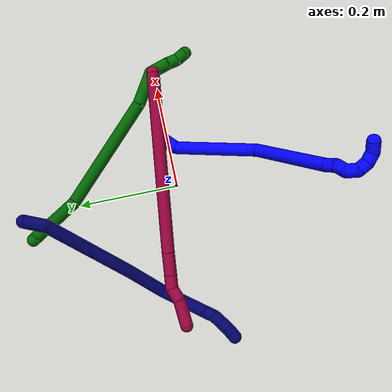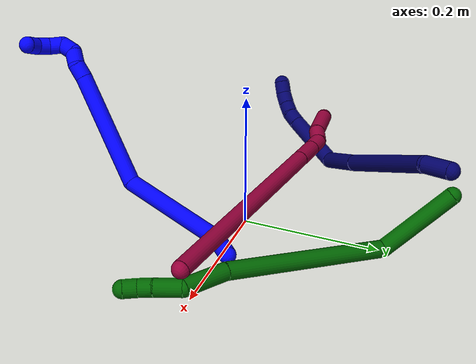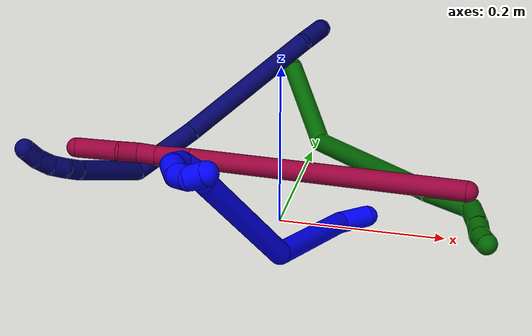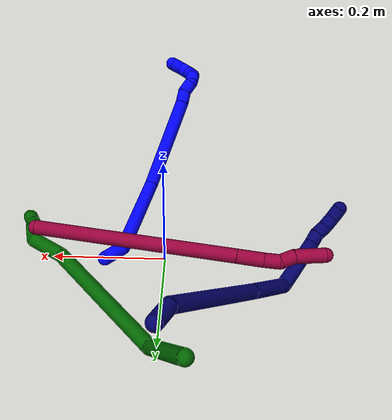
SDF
<sdf version="1.7">
 <world name="default">
  <model name="1">
   <static>0</static>
   <link name="1">
    <collision name="collision-cylinder-e_1_1_4">
     <pose>3e-06 3.3e-05 0.020058 -0.001623 0.000137 0</pose>
     <geometry><cylinder><radius>0.0125</radius><length>0.040116</length></cylinder></geometry>
     <surface>
      <friction><ode><mu>1.16</mu><mu2>1.16</mu2><slip1>0</slip1><slip2>0</slip2></ode></friction>
      <contact><ode><kp>1e+06</kp><kd>1</kd><max_vel>0</max_vel><min_depth>0.001</min_depth></ode></contact>
     </surface>
    </collision>
    <visual name="visual-cylinder-e_1_1_4">
     <pose>3e-06 3.3e-05 0.020058 -0.001623 0.000137 0</pose>
     <geometry><cylinder><radius>0.0125</radius><length>0.040116</length></cylinder></geometry>
     <material><ambient>0 0 1 1</ambient></material>
    </visual>
    <collision name="collision-cylinder-e_2_4_5">
     <pose>-0.021767 -0.037509 0.108158 0.504546 -0.273118 -0.070811</pose>
     <geometry><cylinder><radius>0.0125</radius><length>0.16144</length></cylinder></geometry>
     <surface>
      <friction><ode><mu>1.16</mu><mu2>1.16</mu2><slip1>0</slip1><slip2>0</slip2></ode></friction>
      <contact><ode><kp>1e+06</kp><kd>1</kd><max_vel>0</max_vel><min_depth>0.001</min_depth></ode></contact>
     </surface>
    </collision>
    <visual name="visual-cylinder-e_2_4_5">
     <pose>-0.021767 -0.037509 0.108158 0.504546 -0.273118 -0.070811</pose>
     <geometry><cylinder><radius>0.0125</radius><length>0.16144</length></cylinder></geometry>
     <material><ambient>0 0 1 1</ambient></material>
    </visual>
    <collision name="collision-cylinder-e_3_5_6">
     <pose>-0.016321 -0.132646 0.234787 0.776579 0.320016 0.131842</pose>
     <geometry><cylinder><radius>0.0125</radius><length>0.173051</length></cylinder></geometry>
     <surface>
      <friction><ode><mu>1.16</mu><mu2>1.16</mu2><slip1>0</slip1><slip2>0</slip2></ode></friction>
      <contact><ode><kp>1e+06</kp><kd>1</kd><max_vel>0</max_vel><min_depth>0.001</min_depth></ode></contact>
     </surface>
    </collision>
    <visual name="visual-cylinder-e_3_5_6">
     <pose>-0.016321 -0.132646 0.234787 0.776579 0.320016 0.131842</pose>
     <geometry><cylinder><radius>0.0125</radius><length>0.173051</length></cylinder></geometry>
     <material><ambient>0 0 1 1</ambient></material>
    </visual>
    <collision name="collision-cylinder-e_4_6_7">
     <pose>0.013503 -0.198734 0.30025 0.892043 0.233467 0.112027</pose>
     <geometry><cylinder><radius>0.0125</radius><length>0.022518</length></cylinder></geometry>
     <surface>
      <friction><ode><mu>1.16</mu><mu2>1.16</mu2><slip1>0</slip1><slip2>0</slip2></ode></friction>
      <contact><ode><kp>1e+06</kp><kd>1</kd><max_vel>0</max_vel><min_depth>0.001</min_depth></ode></contact>
     </surface>
    </collision>
    <visual name="visual-cylinder-e_4_6_7">
     <pose>0.013503 -0.198734 0.30025 0.892043 0.233467 0.112027</pose>
     <geometry><cylinder><radius>0.0125</radius><length>0.022518</length></cylinder></geometry>
     <material><ambient>0 0 1 1</ambient></material>
    </visual>
    <collision name="collision-cylinder-e_5_7_8">
     <pose>0.020794 -0.212041 0.315716 0.508005 0.444837 0.117292</pose>
     <geometry><cylinder><radius>0.0125</radius><length>0.02178</length></cylinder></geometry>
     <surface>
      <friction><ode><mu>1.16</mu><mu2>1.16</mu2><slip1>0</slip1><slip2>0</slip2></ode></friction>
      <contact><ode><kp>1e+06</kp><kd>1</kd><max_vel>0</max_vel><min_depth>0.001</min_depth></ode></contact>
     </surface>
    </collision>
    <visual name="visual-cylinder-e_5_7_8">
     <pose>0.020794 -0.212041 0.315716 0.508005 0.444837 0.117292</pose>
     <geometry><cylinder><radius>0.0125</radius><length>0.02178</length></cylinder></geometry>
     <material><ambient>0 0 1 1</ambient></material>
    </visual>
    <collision name="collision-cylinder-e_6_8_9">
     <pose>0.022891 -0.22286 0.332376 0.642206 -0.251388 -0.084009</pose>
     <geometry><cylinder><radius>0.0125</radius><length>0.020814</length></cylinder></geometry>
     <surface>
      <friction><ode><mu>1.16</mu><mu2>1.16</mu2><slip1>0</slip1><slip2>0</slip2></ode></friction>
      <contact><ode><kp>1e+06</kp><kd>1</kd><max_vel>0</max_vel><min_depth>0.001</min_depth></ode></contact>
     </surface>
    </collision>
    <visual name="visual-cylinder-e_6_8_9">
     <pose>0.022891 -0.22286 0.332376 0.642206 -0.251388 -0.084009</pose>
     <geometry><cylinder><radius>0.0125</radius><length>0.020814</length></cylinder></geometry>
     <material><ambient>0 0 1 1</ambient></material>
    </visual>
    <collision name="collision-cylinder-e_7_9_10">
     <pose>0.012418 -0.234528 0.343348 1.09517 -0.894101 -0.568838</pose>
     <geometry><cylinder><radius>0.0125</radius><length>0.020226</length></cylinder></geometry>
     <surface>
      <friction><ode><mu>1.16</mu><mu2>1.16</mu2><slip1>0</slip1><slip2>0</slip2></ode></friction>
      <contact><ode><kp>1e+06</kp><kd>1</kd><max_vel>0</max_vel><min_depth>0.001</min_depth></ode></contact>
     </surface>
    </collision>
    <visual name="visual-cylinder-e_7_9_10">
     <pose>0.012418 -0.234528 0.343348 1.09517 -0.894101 -0.568838</pose>
     <geometry><cylinder><radius>0.0125</radius><length>0.020226</length></cylinder></geometry>
     <material><ambient>0 0 1 1</ambient></material>
    </visual>
    <collision name="collision-cylinder-e_8_10_11">
     <pose>-0.001444 -0.248077 0.344923 1.73659 -0.639933 -0.74615</pose>
     <geometry><cylinder><radius>0.0125</radius><length>0.020019</length></cylinder></geometry>
     <surface>
      <friction><ode><mu>1.16</mu><mu2>1.16</mu2><slip1>0</slip1><slip2>0</slip2></ode></friction>
      <contact><ode><kp>1e+06</kp><kd>1</kd><max_vel>0</max_vel><min_depth>0.001</min_depth></ode></contact>
     </surface>
    </collision>
    <visual name="visual-cylinder-e_8_10_11">
     <pose>-0.001444 -0.248077 0.344923 1.73659 -0.639933 -0.74615</pose>
     <geometry><cylinder><radius>0.0125</radius><length>0.020019</length></cylinder></geometry>
     <material><ambient>0 0 1 1</ambient></material>
    </visual>
    <collision name="collision-cylinder-e_9_11_2">
     <pose>-0.010089 -0.264168 0.338454 2.13255 -0.269596 -0.481677</pose>
     <geometry><cylinder><radius>0.0125</radius><length>0.020037</length></cylinder></geometry>
     <surface>
      <friction><ode><mu>1.16</mu><mu2>1.16</mu2><slip1>0</slip1><slip2>0</slip2></ode></friction>
      <contact><ode><kp>1e+06</kp><kd>1</kd><max_vel>0</max_vel><min_depth>0.001</min_depth></ode></contact>
     </surface>
    </collision>
    <visual name="visual-cylinder-e_9_11_2">
     <pose>-0.010089 -0.264168 0.338454 2.13255 -0.269596 -0.481677</pose>
     <geometry><cylinder><radius>0.0125</radius><length>0.020037</length></cylinder></geometry>
     <material><ambient>0 0 1 1</ambient></material>
    </visual>
    <collision name="collision-sphere-2">
     <pose>-0.012758 -0.272341 0.33331 0 -0 0</pose>
     <geometry><sphere><radius>0.0125</radius></sphere></geometry>
     <surface>
      <friction><ode><mu>1.16</mu><mu2>1.16</mu2><slip1>0</slip1><slip2>0</slip2></ode></friction>
      <contact><ode><kp>1e+06</kp><kd>1</kd><max_vel>0</max_vel><min_depth>0.001</min_depth></ode></contact>
     </surface>
    </collision>
    <visual name="visual-sphere-2">
     <pose>-0.012758 -0.272341 0.33331 0 -0 0</pose>
     <geometry><sphere><radius>0.0125</radius></sphere></geometry>
     <material><ambient>0 0 1 1</ambient></material>
    </visual>
    <collision name="collision-sphere-11">
     <pose>-0.007421 -0.255996 0.343598 0 -0 0</pose>
     <geometry><sphere><radius>0.0125</radius></sphere></geometry>
     <surface>
      <friction><ode><mu>1.16</mu><mu2>1.16</mu2><slip1>0</slip1><slip2>0</slip2></ode></friction>
      <contact><ode><kp>1e+06</kp><kd>1</kd><max_vel>0</max_vel><min_depth>0.001</min_depth></ode></contact>
     </surface>
    </collision>
    <visual name="visual-sphere-11">
     <pose>-0.007421 -0.255996 0.343598 0 -0 0</pose>
     <geometry><sphere><radius>0.0125</radius></sphere></geometry>
     <material><ambient>0 0 1 1</ambient></material>
    </visual>
    <collision name="collision-sphere-10">
     <pose>0.004534 -0.240158 0.346248 0 -0 0</pose>
     <geometry><sphere><radius>0.0125</radius></sphere></geometry>
     <surface>
      <friction><ode><mu>1.16</mu><mu2>1.16</mu2><slip1>0</slip1><slip2>0</slip2></ode></friction>
      <contact><ode><kp>1e+06</kp><kd>1</kd><max_vel>0</max_vel><min_depth>0.001</min_depth></ode></contact>
     </surface>
    </collision>
    <visual name="visual-sphere-10">
     <pose>0.004534 -0.240158 0.346248 0 -0 0</pose>
     <geometry><sphere><radius>0.0125</radius></sphere></geometry>
     <material><ambient>0 0 1 1</ambient></material>
    </visual>
    <collision name="collision-sphere-9">
     <pose>0.020303 -0.228898 0.340448 0 -0 0</pose>
     <geometry><sphere><radius>0.0125</radius></sphere></geometry>
     <surface>
      <friction><ode><mu>1.16</mu><mu2>1.16</mu2><slip1>0</slip1><slip2>0</slip2></ode></friction>
      <contact><ode><kp>1e+06</kp><kd>1</kd><max_vel>0</max_vel><min_depth>0.001</min_depth></ode></contact>
     </surface>
    </collision>
    <visual name="visual-sphere-9">
     <pose>0.020303 -0.228898 0.340448 0 -0 0</pose>
     <geometry><sphere><radius>0.0125</radius></sphere></geometry>
     <material><ambient>0 0 1 1</ambient></material>
    </visual>
    <collision name="collision-sphere-4">
     <pose>6e-06 6.5e-05 0.040115 0 -0 0</pose>
     <geometry><sphere><radius>0.0125</radius></sphere></geometry>
     <surface>
      <friction><ode><mu>1.16</mu><mu2>1.16</mu2><slip1>0</slip1><slip2>0</slip2></ode></friction>
      <contact><ode><kp>1e+06</kp><kd>1</kd><max_vel>0</max_vel><min_depth>0.001</min_depth></ode></contact>
     </surface>
    </collision>
    <visual name="visual-sphere-4">
     <pose>6e-06 6.5e-05 0.040115 0 -0 0</pose>
     <geometry><sphere><radius>0.0125</radius></sphere></geometry>
     <material><ambient>0 0 1 1</ambient></material>
    </visual>
    <collision name="collision-sphere-1">
     <geometry><sphere><radius>0.0125</radius></sphere></geometry>
     <surface>
      <friction><ode><mu>1.16</mu><mu2>1.16</mu2><slip1>0</slip1><slip2>0</slip2></ode></friction>
      <contact><ode><kp>1e+06</kp><kd>1</kd><max_vel>0</max_vel><min_depth>0.001</min_depth></ode></contact>
     </surface>
    </collision>
    <visual name="visual-sphere-1">
     <geometry><sphere><radius>0.0125</radius></sphere></geometry>
     <material><ambient>0 0 1 1</ambient></material>
    </visual>
    <collision name="collision-sphere-8">
     <pose>0.02548 -0.216823 0.324305 0 -0 0</pose>
     <geometry><sphere><radius>0.0125</radius></sphere></geometry>
     <surface>
      <friction><ode><mu>1.16</mu><mu2>1.16</mu2><slip1>0</slip1><slip2>0</slip2></ode></friction>
      <contact><ode><kp>1e+06</kp><kd>1</kd><max_vel>0</max_vel><min_depth>0.001</min_depth></ode></contact>
     </surface>
    </collision>
    <visual name="visual-sphere-8">
     <pose>0.02548 -0.216823 0.324305 0 -0 0</pose>
     <geometry><sphere><radius>0.0125</radius></sphere></geometry>
     <material><ambient>0 0 1 1</ambient></material>
    </visual>
    <collision name="collision-sphere-5">
     <pose>-0.04354 -0.075084 0.176201 0 -0 0</pose>
     <geometry><sphere><radius>0.0125</radius></sphere></geometry>
     <surface>
      <friction><ode><mu>1.16</mu><mu2>1.16</mu2><slip1>0</slip1><slip2>0</slip2></ode></friction>
      <contact><ode><kp>1e+06</kp><kd>1</kd><max_vel>0</max_vel><min_depth>0.001</min_depth></ode></contact>
     </surface>
    </collision>
    <visual name="visual-sphere-5">
     <pose>-0.04354 -0.075084 0.176201 0 -0 0</pose>
     <geometry><sphere><radius>0.0125</radius></sphere></geometry>
     <material><ambient>0 0 1 1</ambient></material>
    </visual>
    <collision name="collision-sphere-6">
     <pose>0.010898 -0.190208 0.293374 0 -0 0</pose>
     <geometry><sphere><radius>0.0125</radius></sphere></geometry>
     <surface>
      <friction><ode><mu>1.16</mu><mu2>1.16</mu2><slip1>0</slip1><slip2>0</slip2></ode></friction>
      <contact><ode><kp>1e+06</kp><kd>1</kd><max_vel>0</max_vel><min_depth>0.001</min_depth></ode></contact>
     </surface>
    </collision>
    <visual name="visual-sphere-6">
     <pose>0.010898 -0.190208 0.293374 0 -0 0</pose>
     <geometry><sphere><radius>0.0125</radius></sphere></geometry>
     <material><ambient>0 0 1 1</ambient></material>
    </visual>
    <collision name="collision-sphere-7">
     <pose>0.016108 -0.207259 0.307127 0 -0 0</pose>
     <geometry><sphere><radius>0.0125</radius></sphere></geometry>
     <surface>
      <friction><ode><mu>1.16</mu><mu2>1.16</mu2><slip1>0</slip1><slip2>0</slip2></ode></friction>
      <contact><ode><kp>1e+06</kp><kd>1</kd><max_vel>0</max_vel><min_depth>0.001</min_depth></ode></contact>
     </surface>
    </collision>
    <visual name="visual-sphere-7">
     <pose>0.016108 -0.207259 0.307127 0 -0 0</pose>
     <geometry><sphere><radius>0.0125</radius></sphere></geometry>
     <material><ambient>0 0 1 1</ambient></material>
    </visual>
    <inertial>
     <pose>-0.01017 -0.115487 0.200165 0 -0 0</pose>
     <mass>0.5</mass>
     <inertia>
      <ixx>0.000798</ixx>
      <ixy>0</ixy>
      <ixz>0</ixz>
      <iyy>0.000657</iyy>
      <iyz>0</iyz>
      <izz>0.00045</izz>
     </inertia>
    </inertial>
   </link>
   <pose>0.104504 0.014117 0.01149 -1.50497 -0.701387 2.30315</pose>
  </model>
  <model name="6">
   <static>0</static>
   <link name="6">
    <collision name="collision-cylinder-e_1_1_4">
     <pose>0.055789 -0.007473 -0.020251 2.78808 1.20162 2.63166</pose>
     <geometry><cylinder><radius>0.0125</radius><length>0.119638</length></cylinder></geometry>
     <surface>
      <friction><ode><mu>1.16</mu><mu2>1.16</mu2><slip1>0</slip1><slip2>0</slip2></ode></friction>
      <contact><ode><kp>1e+06</kp><kd>1</kd><max_vel>0</max_vel><min_depth>0.001</min_depth></ode></contact>
     </surface>
    </collision>
    <visual name="visual-cylinder-e_1_1_4">
     <pose>0.055789 -0.007473 -0.020251 2.78808 1.20162 2.63166</pose>
     <geometry><cylinder><radius>0.0125</radius><length>0.119638</length></cylinder></geometry>
     <material><ambient>0 0.392157 0.003922 1</ambient></material>
    </visual>
    <collision name="collision-cylinder-e_2_4_5">
     <pose>0.19913 -0.091841 -0.019331 1.30213 0.831958 0.649321</pose>
     <geometry><cylinder><radius>0.0125</radius><length>0.236867</length></cylinder></geometry>
     <surface>
      <friction><ode><mu>1.16</mu><mu2>1.16</mu2><slip1>0</slip1><slip2>0</slip2></ode></friction>
      <contact><ode><kp>1e+06</kp><kd>1</kd><max_vel>0</max_vel><min_depth>0.001</min_depth></ode></contact>
     </surface>
    </collision>
    <visual name="visual-cylinder-e_2_4_5">
     <pose>0.19913 -0.091841 -0.019331 1.30213 0.831958 0.649321</pose>
     <geometry><cylinder><radius>0.0125</radius><length>0.236867</length></cylinder></geometry>
     <material><ambient>0 0.392157 0.003922 1</ambient></material>
    </visual>
    <collision name="collision-cylinder-e_3_5_6">
     <pose>0.313371 -0.184161 0.012316 0.974169 0.961005 0.538739</pose>
     <geometry><cylinder><radius>0.0125</radius><length>0.065114</length></cylinder></geometry>
     <surface>
      <friction><ode><mu>1.16</mu><mu2>1.16</mu2><slip1>0</slip1><slip2>0</slip2></ode></friction>
      <contact><ode><kp>1e+06</kp><kd>1</kd><max_vel>0</max_vel><min_depth>0.001</min_depth></ode></contact>
     </surface>
    </collision>
    <visual name="visual-cylinder-e_3_5_6">
     <pose>0.313371 -0.184161 0.012316 0.974169 0.961005 0.538739</pose>
     <geometry><cylinder><radius>0.0125</radius><length>0.065114</length></cylinder></geometry>
     <material><ambient>0 0.392157 0.003922 1</ambient></material>
    </visual>
    <collision name="collision-cylinder-e_4_6_7">
     <pose>0.352156 -0.213055 0.017201 1.96418 0.6924 0.990683</pose>
     <geometry><cylinder><radius>0.0125</radius><length>0.037896</length></cylinder></geometry>
     <surface>
      <friction><ode><mu>1.16</mu><mu2>1.16</mu2><slip1>0</slip1><slip2>0</slip2></ode></friction>
      <contact><ode><kp>1e+06</kp><kd>1</kd><max_vel>0</max_vel><min_depth>0.001</min_depth></ode></contact>
     </surface>
    </collision>
    <visual name="visual-cylinder-e_4_6_7">
     <pose>0.352156 -0.213055 0.017201 1.96418 0.6924 0.990683</pose>
     <geometry><cylinder><radius>0.0125</radius><length>0.037896</length></cylinder></geometry>
     <material><ambient>0 0.392157 0.003922 1</ambient></material>
    </visual>
    <collision name="collision-cylinder-e_5_7_8">
     <pose>0.370697 -0.233038 0.007387 2.14618 0.692887 1.1729</pose>
     <geometry><cylinder><radius>0.0125</radius><length>0.020178</length></cylinder></geometry>
     <surface>
      <friction><ode><mu>1.16</mu><mu2>1.16</mu2><slip1>0</slip1><slip2>0</slip2></ode></friction>
      <contact><ode><kp>1e+06</kp><kd>1</kd><max_vel>0</max_vel><min_depth>0.001</min_depth></ode></contact>
     </surface>
    </collision>
    <visual name="visual-cylinder-e_5_7_8">
     <pose>0.370697 -0.233038 0.007387 2.14618 0.692887 1.1729</pose>
     <geometry><cylinder><radius>0.0125</radius><length>0.020178</length></cylinder></geometry>
     <material><ambient>0 0.392157 0.003922 1</ambient></material>
    </visual>
    <collision name="collision-cylinder-e_6_8_2">
     <pose>0.384402 -0.246546 0.001962 1.74087 0.796732 0.926182</pose>
     <geometry><cylinder><radius>0.0125</radius><length>0.020307</length></cylinder></geometry>
     <surface>
      <friction><ode><mu>1.16</mu><mu2>1.16</mu2><slip1>0</slip1><slip2>0</slip2></ode></friction>
      <contact><ode><kp>1e+06</kp><kd>1</kd><max_vel>0</max_vel><min_depth>0.001</min_depth></ode></contact>
     </surface>
    </collision>
    <visual name="visual-cylinder-e_6_8_2">
     <pose>0.384402 -0.246546 0.001962 1.74087 0.796732 0.926182</pose>
     <geometry><cylinder><radius>0.0125</radius><length>0.020307</length></cylinder></geometry>
     <material><ambient>0 0.392157 0.003922 1</ambient></material>
    </visual>
    <collision name="collision-sphere-2">
     <pose>0.391662 -0.253542 0.00076 0 -0 0</pose>
     <geometry><sphere><radius>0.0125</radius></sphere></geometry>
     <surface>
      <friction><ode><mu>1.16</mu><mu2>1.16</mu2><slip1>0</slip1><slip2>0</slip2></ode></friction>
      <contact><ode><kp>1e+06</kp><kd>1</kd><max_vel>0</max_vel><min_depth>0.001</min_depth></ode></contact>
     </surface>
    </collision>
    <visual name="visual-sphere-2">
     <pose>0.391662 -0.253542 0.00076 0 -0 0</pose>
     <geometry><sphere><radius>0.0125</radius></sphere></geometry>
     <material><ambient>0 0.392157 0.003922 1</ambient></material>
    </visual>
    <collision name="collision-sphere-4">
     <pose>0.111578 -0.014946 -0.040502 0 -0 0</pose>
     <geometry><sphere><radius>0.0125</radius></sphere></geometry>
     <surface>
      <friction><ode><mu>1.16</mu><mu2>1.16</mu2><slip1>0</slip1><slip2>0</slip2></ode></friction>
      <contact><ode><kp>1e+06</kp><kd>1</kd><max_vel>0</max_vel><min_depth>0.001</min_depth></ode></contact>
     </surface>
    </collision>
    <visual name="visual-sphere-4">
     <pose>0.111578 -0.014946 -0.040502 0 -0 0</pose>
     <geometry><sphere><radius>0.0125</radius></sphere></geometry>
     <material><ambient>0 0.392157 0.003922 1</ambient></material>
    </visual>
    <collision name="collision-sphere-1">
     <geometry><sphere><radius>0.0125</radius></sphere></geometry>
     <surface>
      <friction><ode><mu>1.16</mu><mu2>1.16</mu2><slip1>0</slip1><slip2>0</slip2></ode></friction>
      <contact><ode><kp>1e+06</kp><kd>1</kd><max_vel>0</max_vel><min_depth>0.001</min_depth></ode></contact>
     </surface>
    </collision>
    <visual name="visual-sphere-1">
     <geometry><sphere><radius>0.0125</radius></sphere></geometry>
     <material><ambient>0 0.392157 0.003922 1</ambient></material>
    </visual>
    <collision name="collision-sphere-8">
     <pose>0.377141 -0.239551 0.003163 0 -0 0</pose>
     <geometry><sphere><radius>0.0125</radius></sphere></geometry>
     <surface>
      <friction><ode><mu>1.16</mu><mu2>1.16</mu2><slip1>0</slip1><slip2>0</slip2></ode></friction>
      <contact><ode><kp>1e+06</kp><kd>1</kd><max_vel>0</max_vel><min_depth>0.001</min_depth></ode></contact>
     </surface>
    </collision>
    <visual name="visual-sphere-8">
     <pose>0.377141 -0.239551 0.003163 0 -0 0</pose>
     <geometry><sphere><radius>0.0125</radius></sphere></geometry>
     <material><ambient>0 0.392157 0.003922 1</ambient></material>
    </visual>
    <collision name="collision-sphere-5">
     <pose>0.286682 -0.168737 0.00184 0 -0 0</pose>
     <geometry><sphere><radius>0.0125</radius></sphere></geometry>
     <surface>
      <friction><ode><mu>1.16</mu><mu2>1.16</mu2><slip1>0</slip1><slip2>0</slip2></ode></friction>
      <contact><ode><kp>1e+06</kp><kd>1</kd><max_vel>0</max_vel><min_depth>0.001</min_depth></ode></contact>
     </surface>
    </collision>
    <visual name="visual-sphere-5">
     <pose>0.286682 -0.168737 0.00184 0 -0 0</pose>
     <geometry><sphere><radius>0.0125</radius></sphere></geometry>
     <material><ambient>0 0.392157 0.003922 1</ambient></material>
    </visual>
    <collision name="collision-sphere-6">
     <pose>0.34006 -0.199585 0.022792 0 -0 0</pose>
     <geometry><sphere><radius>0.0125</radius></sphere></geometry>
     <surface>
      <friction><ode><mu>1.16</mu><mu2>1.16</mu2><slip1>0</slip1><slip2>0</slip2></ode></friction>
      <contact><ode><kp>1e+06</kp><kd>1</kd><max_vel>0</max_vel><min_depth>0.001</min_depth></ode></contact>
     </surface>
    </collision>
    <visual name="visual-sphere-6">
     <pose>0.34006 -0.199585 0.022792 0 -0 0</pose>
     <geometry><sphere><radius>0.0125</radius></sphere></geometry>
     <material><ambient>0 0.392157 0.003922 1</ambient></material>
    </visual>
    <collision name="collision-sphere-7">
     <pose>0.364252 -0.226526 0.011611 0 -0 0</pose>
     <geometry><sphere><radius>0.0125</radius></sphere></geometry>
     <surface>
      <friction><ode><mu>1.16</mu><mu2>1.16</mu2><slip1>0</slip1><slip2>0</slip2></ode></friction>
      <contact><ode><kp>1e+06</kp><kd>1</kd><max_vel>0</max_vel><min_depth>0.001</min_depth></ode></contact>
     </surface>
    </collision>
    <visual name="visual-sphere-7">
     <pose>0.364252 -0.226526 0.011611 0 -0 0</pose>
     <geometry><sphere><radius>0.0125</radius></sphere></geometry>
     <material><ambient>0 0.392157 0.003922 1</ambient></material>
    </visual>
    <inertial>
     <pose>0.205755 -0.104845 -0.010718 0 -0 0</pose>
     <mass>0.5</mass>
     <inertia>
      <ixx>0.001093</ixx>
      <ixy>0</ixy>
      <ixz>0</ixz>
      <iyy>0.001359</iyy>
      <iyz>0</iyz>
      <izz>-0.000228</izz>
     </inertia>
    </inertial>
   </link>
   <pose>-0.04565 0.286615 0.084026 -0.868183 0.568679 -0.511314</pose>
  </model>
  <model name="7">
   <static>0</static>
   <link name="7">
    <collision name="collision-cylinder-e_1_1_4">
     <pose>-0.010104 -0.015681 -0.008789 2.08164 -0.512086 -0.840425</pose>
     <geometry><cylinder><radius>0.0125</radius><length>0.041242</length></cylinder></geometry>
     <surface>
      <friction><ode><mu>1.16</mu><mu2>1.16</mu2><slip1>0</slip1><slip2>0</slip2></ode></friction>
      <contact><ode><kp>1e+06</kp><kd>1</kd><max_vel>0</max_vel><min_depth>0.001</min_depth></ode></contact>
     </surface>
    </collision>
    <visual name="visual-cylinder-e_1_1_4">
     <pose>-0.010104 -0.015681 -0.008789 2.08164 -0.512086 -0.840425</pose>
     <geometry><cylinder><radius>0.0125</radius><length>0.041242</length></cylinder></geometry>
     <material><ambient>0.003922 0 0.403922 1</ambient></material>
    </visual>
    <collision name="collision-cylinder-e_2_4_5">
     <pose>-0.097171 -0.071132 -0.060284 2.39178 -0.922029 -1.80161</pose>
     <geometry><cylinder><radius>0.0125</radius><length>0.193171</length></cylinder></geometry>
     <surface>
      <friction><ode><mu>1.16</mu><mu2>1.16</mu2><slip1>0</slip1><slip2>0</slip2></ode></friction>
      <contact><ode><kp>1e+06</kp><kd>1</kd><max_vel>0</max_vel><min_depth>0.001</min_depth></ode></contact>
     </surface>
    </collision>
    <visual name="visual-cylinder-e_2_4_5">
     <pose>-0.097171 -0.071132 -0.060284 2.39178 -0.922029 -1.80161</pose>
     <geometry><cylinder><radius>0.0125</radius><length>0.193171</length></cylinder></geometry>
     <material><ambient>0.003922 0 0.403922 1</ambient></material>
    </visual>
    <collision name="collision-cylinder-e_3_5_6">
     <pose>-0.209643 -0.12969 -0.120417 2.31862 -0.945711 -1.72905</pose>
     <geometry><cylinder><radius>0.0125</radius><length>0.087579</length></cylinder></geometry>
     <surface>
      <friction><ode><mu>1.16</mu><mu2>1.16</mu2><slip1>0</slip1><slip2>0</slip2></ode></friction>
      <contact><ode><kp>1e+06</kp><kd>1</kd><max_vel>0</max_vel><min_depth>0.001</min_depth></ode></contact>
     </surface>
    </collision>
    <visual name="visual-cylinder-e_3_5_6">
     <pose>-0.209643 -0.12969 -0.120417 2.31862 -0.945711 -1.72905</pose>
     <geometry><cylinder><radius>0.0125</radius><length>0.087579</length></cylinder></geometry>
     <material><ambient>0.003922 0 0.403922 1</ambient></material>
    </visual>
    <collision name="collision-cylinder-e_4_6_7">
     <pose>-0.265845 -0.191402 -0.135198 1.50926 -0.448442 -0.422474</pose>
     <geometry><cylinder><radius>0.0125</radius><length>0.095452</length></cylinder></geometry>
     <surface>
      <friction><ode><mu>1.16</mu><mu2>1.16</mu2><slip1>0</slip1><slip2>0</slip2></ode></friction>
      <contact><ode><kp>1e+06</kp><kd>1</kd><max_vel>0</max_vel><min_depth>0.001</min_depth></ode></contact>
     </surface>
    </collision>
    <visual name="visual-cylinder-e_4_6_7">
     <pose>-0.265845 -0.191402 -0.135198 1.50926 -0.448442 -0.422474</pose>
     <geometry><cylinder><radius>0.0125</radius><length>0.095452</length></cylinder></geometry>
     <material><ambient>0.003922 0 0.403922 1</ambient></material>
    </visual>
    <collision name="collision-cylinder-e_5_7_8">
     <pose>-0.290073 -0.243858 -0.131188 1.42853 -0.352047 -0.305994</pose>
     <geometry><cylinder><radius>0.0125</radius><length>0.020513</length></cylinder></geometry>
     <surface>
      <friction><ode><mu>1.16</mu><mu2>1.16</mu2><slip1>0</slip1><slip2>0</slip2></ode></friction>
      <contact><ode><kp>1e+06</kp><kd>1</kd><max_vel>0</max_vel><min_depth>0.001</min_depth></ode></contact>
     </surface>
    </collision>
    <visual name="visual-cylinder-e_5_7_8">
     <pose>-0.290073 -0.243858 -0.131188 1.42853 -0.352047 -0.305994</pose>
     <geometry><cylinder><radius>0.0125</radius><length>0.020513</length></cylinder></geometry>
     <material><ambient>0.003922 0 0.403922 1</ambient></material>
    </visual>
    <collision name="collision-cylinder-e_6_8_9">
     <pose>-0.299268 -0.261399 -0.126888 1.21963 -0.585593 -0.415159</pose>
     <geometry><cylinder><radius>0.0125</radius><length>0.020474</length></cylinder></geometry>
     <surface>
      <friction><ode><mu>1.16</mu><mu2>1.16</mu2><slip1>0</slip1><slip2>0</slip2></ode></friction>
      <contact><ode><kp>1e+06</kp><kd>1</kd><max_vel>0</max_vel><min_depth>0.001</min_depth></ode></contact>
     </surface>
    </collision>
    <visual name="visual-cylinder-e_6_8_9">
     <pose>-0.299268 -0.261399 -0.126888 1.21963 -0.585593 -0.415159</pose>
     <geometry><cylinder><radius>0.0125</radius><length>0.020474</length></cylinder></geometry>
     <material><ambient>0.003922 0 0.403922 1</ambient></material>
    </visual>
    <collision name="collision-cylinder-e_7_9_10">
     <pose>-0.309047 -0.277998 -0.119182 1.06373 -0.397204 -0.23575</pose>
     <geometry><cylinder><radius>0.0125</radius><length>0.021308</length></cylinder></geometry>
     <surface>
      <friction><ode><mu>1.16</mu><mu2>1.16</mu2><slip1>0</slip1><slip2>0</slip2></ode></friction>
      <contact><ode><kp>1e+06</kp><kd>1</kd><max_vel>0</max_vel><min_depth>0.001</min_depth></ode></contact>
     </surface>
    </collision>
    <visual name="visual-cylinder-e_7_9_10">
     <pose>-0.309047 -0.277998 -0.119182 1.06373 -0.397204 -0.23575</pose>
     <geometry><cylinder><radius>0.0125</radius><length>0.021308</length></cylinder></geometry>
     <material><ambient>0.003922 0 0.403922 1</ambient></material>
    </visual>
    <collision name="collision-cylinder-e_8_10_2">
     <pose>-0.31565 -0.294269 -0.108292 0.898193 -0.247478 -0.119739</pose>
     <geometry><cylinder><radius>0.0125</radius><length>0.02026</length></cylinder></geometry>
     <surface>
      <friction><ode><mu>1.16</mu><mu2>1.16</mu2><slip1>0</slip1><slip2>0</slip2></ode></friction>
      <contact><ode><kp>1e+06</kp><kd>1</kd><max_vel>0</max_vel><min_depth>0.001</min_depth></ode></contact>
     </surface>
    </collision>
    <visual name="visual-cylinder-e_8_10_2">
     <pose>-0.31565 -0.294269 -0.108292 0.898193 -0.247478 -0.119739</pose>
     <geometry><cylinder><radius>0.0125</radius><length>0.02026</length></cylinder></geometry>
     <material><ambient>0.003922 0 0.403922 1</ambient></material>
    </visual>
    <collision name="collision-sphere-2">
     <pose>-0.318132 -0.301951 -0.102173 0 -0 0</pose>
     <geometry><sphere><radius>0.0125</radius></sphere></geometry>
     <surface>
      <friction><ode><mu>1.16</mu><mu2>1.16</mu2><slip1>0</slip1><slip2>0</slip2></ode></friction>
      <contact><ode><kp>1e+06</kp><kd>1</kd><max_vel>0</max_vel><min_depth>0.001</min_depth></ode></contact>
     </surface>
    </collision>
    <visual name="visual-sphere-2">
     <pose>-0.318132 -0.301951 -0.102173 0 -0 0</pose>
     <geometry><sphere><radius>0.0125</radius></sphere></geometry>
     <material><ambient>0.003922 0 0.403922 1</ambient></material>
    </visual>
    <collision name="collision-sphere-10">
     <pose>-0.313169 -0.286587 -0.114411 0 -0 0</pose>
     <geometry><sphere><radius>0.0125</radius></sphere></geometry>
     <surface>
      <friction><ode><mu>1.16</mu><mu2>1.16</mu2><slip1>0</slip1><slip2>0</slip2></ode></friction>
      <contact><ode><kp>1e+06</kp><kd>1</kd><max_vel>0</max_vel><min_depth>0.001</min_depth></ode></contact>
     </surface>
    </collision>
    <visual name="visual-sphere-10">
     <pose>-0.313169 -0.286587 -0.114411 0 -0 0</pose>
     <geometry><sphere><radius>0.0125</radius></sphere></geometry>
     <material><ambient>0.003922 0 0.403922 1</ambient></material>
    </visual>
    <collision name="collision-sphere-9">
     <pose>-0.304926 -0.26941 -0.123953 0 -0 0</pose>
     <geometry><sphere><radius>0.0125</radius></sphere></geometry>
     <surface>
      <friction><ode><mu>1.16</mu><mu2>1.16</mu2><slip1>0</slip1><slip2>0</slip2></ode></friction>
      <contact><ode><kp>1e+06</kp><kd>1</kd><max_vel>0</max_vel><min_depth>0.001</min_depth></ode></contact>
     </surface>
    </collision>
    <visual name="visual-sphere-9">
     <pose>-0.304926 -0.26941 -0.123953 0 -0 0</pose>
     <geometry><sphere><radius>0.0125</radius></sphere></geometry>
     <material><ambient>0.003922 0 0.403922 1</ambient></material>
    </visual>
    <collision name="collision-sphere-4">
     <pose>-0.020208 -0.031362 -0.017577 0 -0 0</pose>
     <geometry><sphere><radius>0.0125</radius></sphere></geometry>
     <surface>
      <friction><ode><mu>1.16</mu><mu2>1.16</mu2><slip1>0</slip1><slip2>0</slip2></ode></friction>
      <contact><ode><kp>1e+06</kp><kd>1</kd><max_vel>0</max_vel><min_depth>0.001</min_depth></ode></contact>
     </surface>
    </collision>
    <visual name="visual-sphere-4">
     <pose>-0.020208 -0.031362 -0.017577 0 -0 0</pose>
     <geometry><sphere><radius>0.0125</radius></sphere></geometry>
     <material><ambient>0.003922 0 0.403922 1</ambient></material>
    </visual>
    <collision name="collision-sphere-1">
     <geometry><sphere><radius>0.0125</radius></sphere></geometry>
     <surface>
      <friction><ode><mu>1.16</mu><mu2>1.16</mu2><slip1>0</slip1><slip2>0</slip2></ode></friction>
      <contact><ode><kp>1e+06</kp><kd>1</kd><max_vel>0</max_vel><min_depth>0.001</min_depth></ode></contact>
     </surface>
    </collision>
    <visual name="visual-sphere-1">
     <geometry><sphere><radius>0.0125</radius></sphere></geometry>
     <material><ambient>0.003922 0 0.403922 1</ambient></material>
    </visual>
    <collision name="collision-sphere-8">
     <pose>-0.29361 -0.253388 -0.129823 0 -0 0</pose>
     <geometry><sphere><radius>0.0125</radius></sphere></geometry>
     <surface>
      <friction><ode><mu>1.16</mu><mu2>1.16</mu2><slip1>0</slip1><slip2>0</slip2></ode></friction>
      <contact><ode><kp>1e+06</kp><kd>1</kd><max_vel>0</max_vel><min_depth>0.001</min_depth></ode></contact>
     </surface>
    </collision>
    <visual name="visual-sphere-8">
     <pose>-0.29361 -0.253388 -0.129823 0 -0 0</pose>
     <geometry><sphere><radius>0.0125</radius></sphere></geometry>
     <material><ambient>0.003922 0 0.403922 1</ambient></material>
    </visual>
    <collision name="collision-sphere-5">
     <pose>-0.174133 -0.110903 -0.102991 0 -0 0</pose>
     <geometry><sphere><radius>0.0125</radius></sphere></geometry>
     <surface>
      <friction><ode><mu>1.16</mu><mu2>1.16</mu2><slip1>0</slip1><slip2>0</slip2></ode></friction>
      <contact><ode><kp>1e+06</kp><kd>1</kd><max_vel>0</max_vel><min_depth>0.001</min_depth></ode></contact>
     </surface>
    </collision>
    <visual name="visual-sphere-5">
     <pose>-0.174133 -0.110903 -0.102991 0 -0 0</pose>
     <geometry><sphere><radius>0.0125</radius></sphere></geometry>
     <material><ambient>0.003922 0 0.403922 1</ambient></material>
    </visual>
    <collision name="collision-sphere-6">
     <pose>-0.245152 -0.148477 -0.137843 0 -0 0</pose>
     <geometry><sphere><radius>0.0125</radius></sphere></geometry>
     <surface>
      <friction><ode><mu>1.16</mu><mu2>1.16</mu2><slip1>0</slip1><slip2>0</slip2></ode></friction>
      <contact><ode><kp>1e+06</kp><kd>1</kd><max_vel>0</max_vel><min_depth>0.001</min_depth></ode></contact>
     </surface>
    </collision>
    <visual name="visual-sphere-6">
     <pose>-0.245152 -0.148477 -0.137843 0 -0 0</pose>
     <geometry><sphere><radius>0.0125</radius></sphere></geometry>
     <material><ambient>0.003922 0 0.403922 1</ambient></material>
    </visual>
    <collision name="collision-sphere-7">
     <pose>-0.286537 -0.234328 -0.132553 0 -0 0</pose>
     <geometry><sphere><radius>0.0125</radius></sphere></geometry>
     <surface>
      <friction><ode><mu>1.16</mu><mu2>1.16</mu2><slip1>0</slip1><slip2>0</slip2></ode></friction>
      <contact><ode><kp>1e+06</kp><kd>1</kd><max_vel>0</max_vel><min_depth>0.001</min_depth></ode></contact>
     </surface>
    </collision>
    <visual name="visual-sphere-7">
     <pose>-0.286537 -0.234328 -0.132553 0 -0 0</pose>
     <geometry><sphere><radius>0.0125</radius></sphere></geometry>
     <material><ambient>0.003922 0 0.403922 1</ambient></material>
    </visual>
    <inertial>
     <pose>-0.175962 -0.13251 -0.090962 0 -0 0</pose>
     <mass>0.5</mass>
     <inertia>
      <ixx>-0.000469</ixx>
      <ixy>0</ixy>
      <ixz>0</ixz>
      <iyy>3.5e-05</iyy>
      <iyz>0</iyz>
      <izz>0.000919</izz>
     </inertia>
    </inertial>
   </link>
   <pose>-0.007557 0.284042 0.143752 -0.555348 -0.40482 0.077408</pose>
  </model>
  <model name="8">
   <static>0</static>
   <link name="8">
    <collision name="collision-cylinder-e_1_1_4">
     <pose>-0.034273 -0.01269 -0.170609 3.06735 -0.197716 -2.425</pose>
     <geometry><cylinder><radius>0.0125</radius><length>0.34896</length></cylinder></geometry>
     <surface>
      <friction><ode><mu>1.16</mu><mu2>1.16</mu2><slip1>0</slip1><slip2>0</slip2></ode></friction>
      <contact><ode><kp>1e+06</kp><kd>1</kd><max_vel>0</max_vel><min_depth>0.001</min_depth></ode></contact>
     </surface>
    </collision>
    <visual name="visual-cylinder-e_1_1_4">
     <pose>-0.034273 -0.01269 -0.170609 3.06735 -0.197716 -2.425</pose>
     <geometry><cylinder><radius>0.0125</radius><length>0.34896</length></cylinder></geometry>
     <material><ambient>0.584314 0 0.227451 1</ambient></material>
    </visual>
    <collision name="collision-cylinder-e_2_4_5">
     <pose>-0.073686 -0.026751 -0.363298 3.07961 -0.228286 -2.61336</pose>
     <geometry><cylinder><radius>0.0125</radius><length>0.045422</length></cylinder></geometry>
     <surface>
      <friction><ode><mu>1.16</mu><mu2>1.16</mu2><slip1>0</slip1><slip2>0</slip2></ode></friction>
      <contact><ode><kp>1e+06</kp><kd>1</kd><max_vel>0</max_vel><min_depth>0.001</min_depth></ode></contact>
     </surface>
    </collision>
    <visual name="visual-cylinder-e_2_4_5">
     <pose>-0.073686 -0.026751 -0.363298 3.07961 -0.228286 -2.61336</pose>
     <geometry><cylinder><radius>0.0125</radius><length>0.045422</length></cylinder></geometry>
     <material><ambient>0.584314 0 0.227451 1</ambient></material>
    </visual>
    <collision name="collision-cylinder-e_3_5_6">
     <pose>-0.081024 -0.028793 -0.398697 3.09117 -0.163379 -2.54399</pose>
     <geometry><cylinder><radius>0.0125</radius><length>0.027032</length></cylinder></geometry>
     <surface>
      <friction><ode><mu>1.16</mu><mu2>1.16</mu2><slip1>0</slip1><slip2>0</slip2></ode></friction>
      <contact><ode><kp>1e+06</kp><kd>1</kd><max_vel>0</max_vel><min_depth>0.001</min_depth></ode></contact>
     </surface>
    </collision>
    <visual name="visual-cylinder-e_3_5_6">
     <pose>-0.081024 -0.028793 -0.398697 3.09117 -0.163379 -2.54399</pose>
     <geometry><cylinder><radius>0.0125</radius><length>0.027032</length></cylinder></geometry>
     <material><ambient>0.584314 0 0.227451 1</ambient></material>
    </visual>
    <collision name="collision-cylinder-e_4_6_7">
     <pose>-0.085242 -0.023419 -0.423473 -2.656 -0.154625 0.606256</pose>
     <geometry><cylinder><radius>0.0125</radius><length>0.026223</length></cylinder></geometry>
     <surface>
      <friction><ode><mu>1.16</mu><mu2>1.16</mu2><slip1>0</slip1><slip2>0</slip2></ode></friction>
      <contact><ode><kp>1e+06</kp><kd>1</kd><max_vel>0</max_vel><min_depth>0.001</min_depth></ode></contact>
     </surface>
    </collision>
    <visual name="visual-cylinder-e_4_6_7">
     <pose>-0.085242 -0.023419 -0.423473 -2.656 -0.154625 0.606256</pose>
     <geometry><cylinder><radius>0.0125</radius><length>0.026223</length></cylinder></geometry>
     <material><ambient>0.584314 0 0.227451 1</ambient></material>
    </visual>
    <collision name="collision-cylinder-e_5_7_2">
     <pose>-0.092352 -0.013719 -0.460351 -2.99885 -0.195698 1.88264</pose>
     <geometry><cylinder><radius>0.0125</radius><length>0.052363</length></cylinder></geometry>
     <surface>
      <friction><ode><mu>1.16</mu><mu2>1.16</mu2><slip1>0</slip1><slip2>0</slip2></ode></friction>
      <contact><ode><kp>1e+06</kp><kd>1</kd><max_vel>0</max_vel><min_depth>0.001</min_depth></ode></contact>
     </surface>
    </collision>
    <visual name="visual-cylinder-e_5_7_2">
     <pose>-0.092352 -0.013719 -0.460351 -2.99885 -0.195698 1.88264</pose>
     <geometry><cylinder><radius>0.0125</radius><length>0.052363</length></cylinder></geometry>
     <material><ambient>0.584314 0 0.227451 1</ambient></material>
    </visual>
    <collision name="collision-sphere-2">
     <pose>-0.097443 -0.010065 -0.485772 0 -0 0</pose>
     <geometry><sphere><radius>0.0125</radius></sphere></geometry>
     <surface>
      <friction><ode><mu>1.16</mu><mu2>1.16</mu2><slip1>0</slip1><slip2>0</slip2></ode></friction>
      <contact><ode><kp>1e+06</kp><kd>1</kd><max_vel>0</max_vel><min_depth>0.001</min_depth></ode></contact>
     </surface>
    </collision>
    <visual name="visual-sphere-2">
     <pose>-0.097443 -0.010065 -0.485772 0 -0 0</pose>
     <geometry><sphere><radius>0.0125</radius></sphere></geometry>
     <material><ambient>0.584314 0 0.227451 1</ambient></material>
    </visual>
    <collision name="collision-sphere-7">
     <pose>-0.087261 -0.017372 -0.43493 0 -0 0</pose>
     <geometry><sphere><radius>0.0125</radius></sphere></geometry>
     <surface>
      <friction><ode><mu>1.16</mu><mu2>1.16</mu2><slip1>0</slip1><slip2>0</slip2></ode></friction>
      <contact><ode><kp>1e+06</kp><kd>1</kd><max_vel>0</max_vel><min_depth>0.001</min_depth></ode></contact>
     </surface>
    </collision>
    <visual name="visual-sphere-7">
     <pose>-0.087261 -0.017372 -0.43493 0 -0 0</pose>
     <geometry><sphere><radius>0.0125</radius></sphere></geometry>
     <material><ambient>0.584314 0 0.227451 1</ambient></material>
    </visual>
    <collision name="collision-sphere-6">
     <pose>-0.083223 -0.029465 -0.412016 0 -0 0</pose>
     <geometry><sphere><radius>0.0125</radius></sphere></geometry>
     <surface>
      <friction><ode><mu>1.16</mu><mu2>1.16</mu2><slip1>0</slip1><slip2>0</slip2></ode></friction>
      <contact><ode><kp>1e+06</kp><kd>1</kd><max_vel>0</max_vel><min_depth>0.001</min_depth></ode></contact>
     </surface>
    </collision>
    <visual name="visual-sphere-6">
     <pose>-0.083223 -0.029465 -0.412016 0 -0 0</pose>
     <geometry><sphere><radius>0.0125</radius></sphere></geometry>
     <material><ambient>0.584314 0 0.227451 1</ambient></material>
    </visual>
    <collision name="collision-sphere-5">
     <pose>-0.078826 -0.028121 -0.385378 0 -0 0</pose>
     <geometry><sphere><radius>0.0125</radius></sphere></geometry>
     <surface>
      <friction><ode><mu>1.16</mu><mu2>1.16</mu2><slip1>0</slip1><slip2>0</slip2></ode></friction>
      <contact><ode><kp>1e+06</kp><kd>1</kd><max_vel>0</max_vel><min_depth>0.001</min_depth></ode></contact>
     </surface>
    </collision>
    <visual name="visual-sphere-5">
     <pose>-0.078826 -0.028121 -0.385378 0 -0 0</pose>
     <geometry><sphere><radius>0.0125</radius></sphere></geometry>
     <material><ambient>0.584314 0 0.227451 1</ambient></material>
    </visual>
    <collision name="collision-sphere-1">
     <geometry><sphere><radius>0.0125</radius></sphere></geometry>
     <surface>
      <friction><ode><mu>1.16</mu><mu2>1.16</mu2><slip1>0</slip1><slip2>0</slip2></ode></friction>
      <contact><ode><kp>1e+06</kp><kd>1</kd><max_vel>0</max_vel><min_depth>0.001</min_depth></ode></contact>
     </surface>
    </collision>
    <visual name="visual-sphere-1">
     <geometry><sphere><radius>0.0125</radius></sphere></geometry>
     <material><ambient>0.584314 0 0.227451 1</ambient></material>
    </visual>
    <collision name="collision-sphere-4">
     <pose>-0.068546 -0.02538 -0.341219 0 -0 0</pose>
     <geometry><sphere><radius>0.0125</radius></sphere></geometry>
     <surface>
      <friction><ode><mu>1.16</mu><mu2>1.16</mu2><slip1>0</slip1><slip2>0</slip2></ode></friction>
      <contact><ode><kp>1e+06</kp><kd>1</kd><max_vel>0</max_vel><min_depth>0.001</min_depth></ode></contact>
     </surface>
    </collision>
    <visual name="visual-sphere-4">
     <pose>-0.068546 -0.02538 -0.341219 0 -0 0</pose>
     <geometry><sphere><radius>0.0125</radius></sphere></geometry>
     <material><ambient>0.584314 0 0.227451 1</ambient></material>
    </visual>
    <inertial>
     <pose>-0.049137 -0.015508 -0.244051 0 -0 0</pose>
     <mass>0.5</mass>
     <inertia>
      <ixx>-0.004929</ixx>
      <ixy>0</ixy>
      <ixz>0</ixz>
      <iyy>0.000439</iyy>
      <iyz>0</iyz>
      <izz>0.000922</izz>
     </inertia>
    </inertial>
   </link>
   <pose>0.223199 0.00017 0.0657 2.03754 -1.19767 1.01321</pose>
  </model>
 </world>
</sdf>
